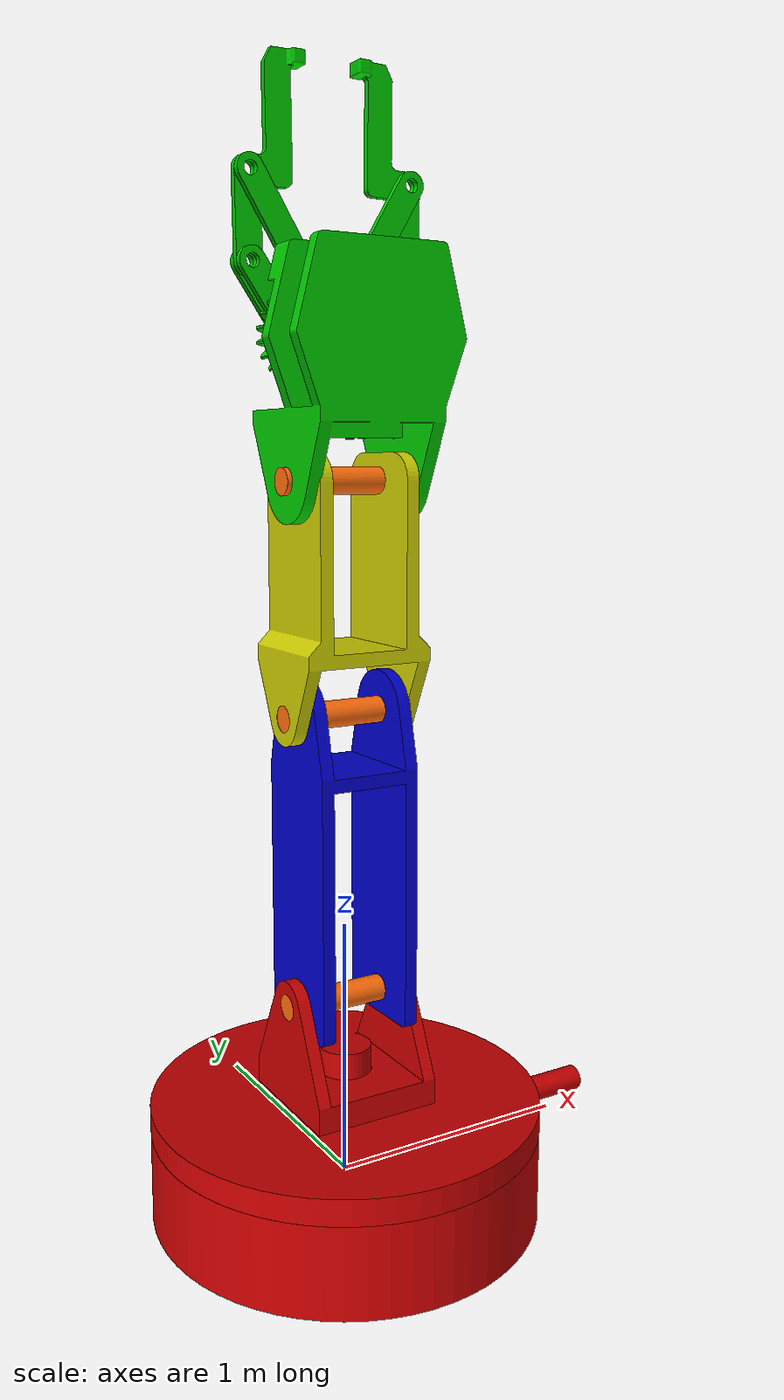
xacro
<?xml version="1.0"?>
<robot name="arm" version="1.0" xmlns:xacro="http://ros.org/wiki/xacro">
  <!-- Gazebo ROS Control plugin -->

  <xacro:include filename="$(find sim)/urdf/arm.gazebo" />
  <xacro:include filename="$(find sim)/urdf/materials.xacro" />

  <!-- Fixing robot to base -->
  <link name="world"/>
  <joint name="fixed" type="fixed">
    <parent link="world"/>
    <child link="RoboticARM_-_Base-2_Base_bottom-1_link"/>
  </joint>

  <!-- Joints -->
  <joint name="b_joint" type="revolute">
    <limit lower="-3.14000" upper="3.14000" effort="10.0" velocity="1.0"/>
    <origin rpy="0.00000 0.00000 0.00000" xyz="-0.00177 0.00000 0.72061"/>
    <parent link="RoboticARM_-_Base-2_Base_bottom-1_link"/>
    <child link="RoboticARM_-_Link1-1_link"/>
    <axis xyz="1.00000 0.00000 0.00000"/>
    <dynamics damping="0.7"/>
  </joint>
  <joint name="m_joint" type="revolute" >
    <limit lower="-3.14000" upper="3.14000" effort="10.0" velocity="1.0"/>
    <origin rpy="0.00000 0.00000 0.00000" xyz="0.00153 0.01211 1.09993"/>
    <parent link="RoboticARM_-_Link1-1_link"/>
    <child link="RoboticARM_-_Link2-1_link"/>
    <axis xyz="1.00000 0.00000 0.00000"/>
    <dynamics damping="0.7"/>
  </joint>
  <joint name="t_joint" type="revolute" >
    <limit lower="-3.14000" upper="3.14000" effort="10.0" velocity="1.0"/>
    <origin rpy="0.00000 0.00000 0.00000" xyz="-0.00224 0.00221 0.85010"/>
    <parent link="RoboticARM_-_Link2-1_link"/>
    <child link="RoboticARM_-_Gripper-1_Gripper_base-1_link"/>
    <axis xyz="1.00000 0.00000 0.00000"/>
    <dynamics damping="0.7"/>
  </joint>

  <!-- Links -->
  <link name="RoboticARM_-_Base-2_Base_bottom-1_link">
    <collision name="RoboticARM - Base-2 Base_bottom-1_collision">
      <origin rpy="0.00000 0.00000 0.00000" xyz="-0.00133 0.00000 0.03421"/>
      <geometry>
        <cylinder radius="0.82500" length="0.38500"/>
      </geometry>
    </collision>
    <inertial>
      <inertia ixx="1.58550" ixy="0.00012" ixz="0.05181" iyy="1.63580" iyz="-0.00010" izz="3.00072"/>
      <origin rpy="0.00000 0.00000 0.00000" xyz="-0.00367 0.00000 0.1299"/>
      <mass value="10.00000"/>
    </inertial>
    <visual name="RoboticARM - Base-2 Base_bottom-1">
      <origin rpy="0.00000 0.00000 0.00000" xyz="0.00000 0.00000 0"/>
      <geometry>
        <mesh filename="package://sim/meshes/stl/RoboticARM - Base-2 Base_bottom-1.stl" scale="1.00000 1.00000 1.00000"/>
      </geometry>
      <material name="red"/>
    </visual>
    <visual name="RoboticARM - Base-2 Base_top-1">
      <origin rpy="0.00000 0.00000 0.00000" xyz="-0.00178 -0.00017 0.27240"/>
      <geometry>
        <mesh filename="package://sim/meshes/stl/RoboticARM - Base-2 Base_top-1.stl" scale="1.00000 1.00000 1.00000"/>
      </geometry>
      <material name="red"/>
    </visual>
    <visual name="RoboticARM - Base-2 straight miter gear_am-2">
      <origin rpy="0.00000 0.00000 0.00000" xyz="0.74310 0.00000 0.09562"/>
      <geometry>
        <mesh filename="package://sim/meshes/stl/RoboticARM - Base-2 straight miter gear_am-2.stl" scale="1.00000 1.00000 1.00000"/>
      </geometry>
      <material name="red"/>
    </visual>
    <visual name="RoboticARM - Base-2 straight miter gear_am-3">
      <origin rpy="0.00000 0.00000 0.00000" xyz="-0.00177 -0.00008 0.00747"/>
      <geometry>
        <mesh filename="package://sim/meshes/stl/RoboticARM - Base-2 straight miter gear_am-3.stl" scale="1.00000 1.00000 1.00000"/>
      </geometry>
      <material name="red"/>
    </visual>
    <visual name="RoboticARM - Base_Connector-1">
      <origin rpy="0.00000 0.00000 0.00000" xyz="-0.00177 -0.00000 0.47283"/>
      <geometry>
        <mesh filename="package://sim/meshes/stl/RoboticARM - Base_Connector-1.stl" scale="1.00000 1.00000 1.00000"/>
      </geometry>
      <material name="red"/>
    </visual>
  </link>
  <link name="RoboticARM_-_Gripper-1_Gripper_base-1_link">
    <collision name="RoboticARM - Gripper-1 Gripper_base-1_collision">
      <origin rpy="0.00000 0.00000 0.00000" xyz="-0.00125 -0.00021 0.40303"/>
      <geometry>
        <box size="0.66914 0.50137 0.47794"/>
      </geometry>
    </collision>
    <collision name="RoboticARM - Gripper-1 Gripper_clamp-1_collision">
      <origin rpy="0.00000 0.00000 0.00000" xyz="-0.19818 0.06984 1.14998"/>
      <geometry>
        <box size="0.21358 0.06043 0.60620"/>
      </geometry>
    </collision>
    <collision name="RoboticARM - Gripper-1 Gripper_clamp-2_collision">
      <origin rpy="0.00000 0.00000 0.00000" xyz="0.18699 0.07031 1.14998"/>
      <geometry>
        <box size="0.21616 0.06043 0.60469"/>
      </geometry>
    </collision>
    <inertial>
      <inertia ixx="0.00137" ixy="-0.00000" ixz="-0.00001" iyy="0.00154" iyz="0.00000" izz="0.00017"/>
      <origin rpy="0.00000 0.00000 0.00000" xyz="-0.00637 0.08715 1.09527"/>
      <mass value="0.02000"/>
    </inertial>
    <visual name="RoboticARM - Gripper-1 Gripper_arm-1">
      <origin rpy="0.00000 0.00000 0.00000" xyz="-0.21716 0.08531 0.59226"/>
      <geometry>
        <mesh filename="package://sim/meshes/stl/RoboticARM - Gripper-1 Gripper_arm-1.stl" scale="1.00000 1.00000 1.00000"/>
      </geometry>
      <material name="green"/>
    </visual>
    <visual name="RoboticARM - Gripper-1 Gripper_arm-2">
      <origin rpy="0.00000 0.00000 0.00000" xyz="0.21093 0.08627 0.59483"/>
      <geometry>
        <mesh filename="package://sim/meshes/stl/RoboticARM - Gripper-1 Gripper_arm-2.stl" scale="1.00000 1.00000 1.00000"/>
      </geometry>
      <material name="green"/>
    </visual>
    <visual name="RoboticARM - Gripper-1 Gripper_base-1">
      <origin rpy="0.00000 0.00000 0.00000" xyz="0.00497 -0.02716 0.0"/>
      <geometry>
        <mesh filename="package://sim/meshes/stl/RoboticARM - Gripper-1 Gripper_base-1.stl" scale="1.00000 1.00000 1.00000"/>
      </geometry>
      <material name="green"/>
    </visual>
    <visual name="RoboticARM - Gripper-1 Gripper_clamp-1">
      <origin rpy="0.00000 0.00000 0.00000" xyz="-0.25486 0.08660 1.09314"/>
      <geometry>
        <mesh filename="package://sim/meshes/stl/RoboticARM - Gripper-1 Gripper_clamp-1.stl" scale="1.00000 1.00000 1.00000"/>
      </geometry>
      <material name="green"/>
    </visual>
    <visual name="RoboticARM - Gripper-1 Gripper_clamp-2">
      <origin rpy="0.00000 0.00000 0.00000" xyz="0.24212 0.08771 1.09740"/>
      <geometry>
        <mesh filename="package://sim/meshes/stl/RoboticARM - Gripper-1 Gripper_clamp-2.stl" scale="1.00000 1.00000 1.00000"/>
      </geometry>
      <material name="green"/>
    </visual>
    <visual name="RoboticARM - Gripper-1 Gripper_link-1">
      <origin rpy="0.00000 0.00000 0.00000" xyz="0.21916 0.06270 0.88928"/>
      <geometry>
        <mesh filename="package://sim/meshes/stl/RoboticARM - Gripper-1 Gripper_link-1.stl" scale="1.00000 1.00000 1.00000"/>
      </geometry>
      <material name="green"/>
    </visual>
    <visual name="RoboticARM - Gripper-1 Gripper_link-2">
      <origin rpy="0.00000 0.00000 0.00000" xyz="-0.22816 0.06170 0.88634"/>
      <geometry>
        <mesh filename="package://sim/meshes/stl/RoboticARM - Gripper-1 Gripper_link-2.stl" scale="1.00000 1.00000 1.00000"/>
      </geometry>
      <material name="green"/>
    </visual>
    <visual name="RoboticARM - Gripper-1 spur gear_am-2">
      <origin rpy="0.00000 0.00000 0.00000" xyz="0.14793 0.02513 0.50026"/>
      <geometry>
        <mesh filename="package://sim/meshes/stl/RoboticARM - Gripper-1 spur gear_am-2.stl" scale="1.00000 1.00000 1.00000"/>
      </geometry>
      <material name="green"/>
    </visual>
    <visual name="RoboticARM - Gripper-1 spur gear_am-3">
      <origin rpy="0.00000 0.00000 0.00000" xyz="-0.15181 0.02446 0.49910"/>
      <geometry>
        <mesh filename="package://sim/meshes/stl/RoboticARM - Gripper-1 spur gear_am-3.stl" scale="1.00000 1.00000 1.00000"/>
      </geometry>
      <material name="green"/>
    </visual>
    <visual name="RoboticARM - Gripper-1 spur gear_am-4">
      <origin rpy="0.00000 0.00000 0.00000" xyz="0.06345 0.02505 0.26512"/>
      <geometry>
        <mesh filename="package://sim/meshes/stl/RoboticARM - Gripper-1 spur gear_am-4.stl" scale="1.00000 1.00000 1.00000"/>
      </geometry>
      <material name="green"/>
    </visual>
    <visual name="RoboticARM - Joint-2">
      <origin rpy="0.00000 0.00000 0.00000" xyz="0.00001 -0.00092 -0.00089"/>
      <geometry>
        <mesh filename="package://sim/meshes/stl/RoboticARM - Joint-2.stl" scale="1.00000 1.00000 1.00000"/>
      </geometry>
      <material name="orange"/>
    </visual>
  </link>
  <link name="RoboticARM_-_Link1-1_link">
    <collision name="RoboticARM - Link1-1_collision">
      <origin rpy="0.00000 0.00000 0.00000" xyz="0.00078 0.00567 0.55762"/>
      <geometry>
        <cylinder radius="0.21651" length="0.90610"/>
      </geometry>
    </collision>
    <inertial>
      <inertia ixx="0.01074" ixy="0.00000" ixz="-0.00001" iyy="0.01154" iyz="-0.00010" izz="0.00259"/>
      <origin rpy="0.00000 0.00000 0.00000" xyz="0.00080 0.00631 0.57335"/>
      <mass value="0.10000"/>
    </inertial>
    <visual name="RoboticARM - Joint-3">
      <origin rpy="0.00000 0.00000 0.00000" xyz="0.00000 -0.00000 0.00000"/>
      <geometry>
        <mesh filename="package://sim/meshes/stl/RoboticARM - Joint-3.stl" scale="1.00000 1.00000 1.00000"/>
      </geometry>
      <material name="orange"/>
    </visual>
    <visual name="RoboticARM - Link1-1">
      <origin rpy="0.00000 0.00000 0.00000" xyz="0.00074 0.00586 0"/>
      <geometry>
        <mesh filename="package://sim/meshes/stl/RoboticARM - Link1-1.stl" scale="1.00000 1.00000 1.00000"/>
      </geometry>
      <material name="blue"/>
    </visual>
  </link>
  <link name="RoboticARM_-_Link2-1_link">
    <collision name="RoboticARM - Link2-1_collision">
      <origin rpy="0.00000 0.00000 0.00000" xyz="-0.00044 0.00129 0.47416"/>
      <geometry>
        <cylinder radius="0.25091" length="0.54675"/>
      </geometry>
    </collision>
    <inertial>
      <inertia ixx="0.00638" ixy="0.00000" ixz="0.00001" iyy="0.00755" iyz="-0.00001" izz="0.00291"/>
      <origin rpy="0.00000 0.00000 0.00000" xyz="-0.00109 0.00116 0.42112"/>
      <mass value="0.10000"/>
    </inertial>
    <visual name="RoboticARM - Joint-1">
      <origin rpy="0.00000 0.00000 0.00000" xyz="-0.00000 -0.00000 -0.00000"/>
      <geometry>
        <mesh filename="package://sim/meshes/stl/RoboticARM - Joint-1.stl" scale="1.00000 1.00000 1.00000"/>
      </geometry>
      <material name="orange"/>
    </visual>
    <visual name="RoboticARM - Link2-1">
      <origin rpy="0.00000 0.00000 0.00000" xyz="-0.00115 0.00123 0.0"/>
      <geometry>
        <mesh filename="package://sim/meshes/stl/RoboticARM - Link2-1.stl" scale="1.00000 1.00000 1.00000"/>
      </geometry>
      <material name="yellow"/>
    </visual>
  </link>

  <!-- Tramission -->
  <transmission name="trans_b_joint">
    <type>transmission_interface/SimpleTransmission</type>
    <joint name="b_joint">
      <hardwareInterface>hardware_interface/EffortJointInterface</hardwareInterface>
    </joint>
    <actuator name="motor_b">
      <hardwareInterface>hardware_interface/EffortJointInterface</hardwareInterface>
      <mechanicalReduction>1</mechanicalReduction>
    </actuator>
  </transmission>
  <transmission name="trans_m_joint">
    <type>transmission_interface/SimpleTransmission</type>
    <joint name="m_joint">
      <hardwareInterface>hardware_interface/EffortJointInterface</hardwareInterface>
    </joint>
    <actuator name="motor_m">
      <hardwareInterface>hardware_interface/EffortJointInterface</hardwareInterface>
      <mechanicalReduction>1</mechanicalReduction>
    </actuator>
  </transmission>
  <transmission name="trans_t_joint">
    <type>transmission_interface/SimpleTransmission</type>
    <joint name="t_joint">
      <hardwareInterface>hardware_interface/EffortJointInterface</hardwareInterface>
    </joint>
    <actuator name="motor_t">
      <hardwareInterface>hardware_interface/EffortJointInterface</hardwareInterface>
      <mechanicalReduction>1</mechanicalReduction>
    </actuator>
  </transmission>

</robot>

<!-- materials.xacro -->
<robot>

  <material name="black">
    <color rgba="0.0 0.0 0.0 1.0"/>
  </material>

  <material name="blue">
    <color rgba="0.0 0.0 0.8 1.0"/>
  </material>

  <material name="green">
    <color rgba="0.0 0.8 0.0 1.0"/>
  </material>

  <material name="grey">
    <color rgba="0.2 0.2 0.2 1.0"/>
  </material>

  <material name="orange">
    <color rgba="${255/255} ${108/255} ${10/255} 1.0"/>
  </material>

  <material name="yellow">
    <color rgba="0.8 0.8 0.0 1.0"/>
  </material>

  <material name="brown">
    <color rgba="${222/255} ${207/255} ${195/255} 1.0"/>
  </material>

  <material name="red">
    <color rgba="0.8 0.0 0.0 1.0"/>
  </material>

  <material name="white">
    <color rgba="1.0 1.0 1.0 1.0"/>
  </material>

</robot>
